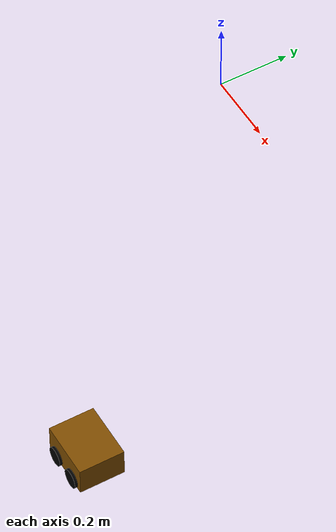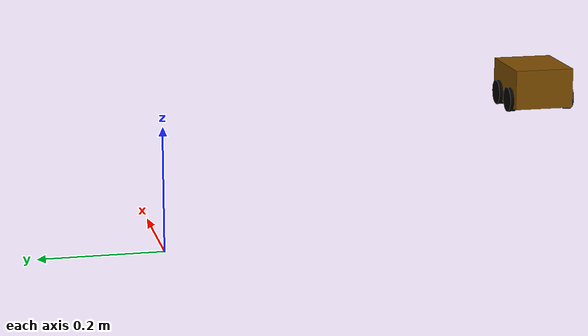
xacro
<?xml version="1.0"?>
<robot name="base" xmlns:xacro="http://www.ros.org/wiki/xacro">

	<xacro:property name="PI" value="3.141"/>

	<material name="black">
		<color rgba="0.0 0.0 0.0 1.0" />
	</material>

	<xacro:property name="base_footprint_radius" value="0.001" />
	<xacro:property name="earth_space" value="0.01" />

	<xacro:property name="base_link_l" value="0.15" />
	<xacro:property name="base_link_w" value="0.12" />
	<xacro:property name="base_link_h" value="0.08" />
	<xacro:property name="base_link_mg" value="0.5" />

	<link name="base_footprint">
		<visual>
			<geometry>
				<sphere radius="${base_footprint_radius}" />
			</geometry>
		</visual>
	</link>

	<link name="base_link">
		<visual>
			<geometry>
				<box size="${base_link_l}  ${base_link_w} ${base_link_h}" />
			</geometry>
			<origin xyz="0 0 0" rpy="0 0 0" />
			<material name="yellow">
				<color rgba="0.5 0.3 0.0 1" />
			</material>
		</visual>
		<collision>
			<geometry>
				<box size="${base_link_l}  ${base_link_w} ${base_link_h}" />
			</geometry>
			<origin xyz="0 0 0" rpy="0 0 0" />
		</collision>
		<xacro:Box_inertial_matrix m="${base_link_mg}" l="${base_link_l}" w="${base_link_w}" h="${base_link_h}"/>
	</link>

	<joint name="base_link2base_footprint" type="fixed">
		<parent link="base_footprint" />
		<child link="base_link" />
		<origin xyz="0.9 -0.9 ${earth_space + base_link_h / 2 }" rpy="0 0 0" />
	</joint>

	<gazebo reference="base_link">
		<material>Gazebo/Yellow</material>
	</gazebo>

	<xacro:property name="wheel_radius" value="0.025" />
	<xacro:property name="wheel_length" value="0.015" />
	<xacro:property name="wheel_m" value="0.5" />

	<xacro:macro name="add_wheels" params="name flag fr_ba">
		<link name="${name}_wheel">
			<visual>
				<geometry>
					<cylinder radius="${wheel_radius}" length="${wheel_length}" />
				</geometry>
				<origin xyz="0.0 0.0 0.0" rpy="${PI / 2} 0.0 0.0" />
				<material name="black" />
			</visual>

			<collision>
				<geometry>
					<cylinder radius="${wheel_radius}" length="${wheel_length}" />
				</geometry>
				<origin xyz="0.0 0.0 0.0" rpy="${PI / 2} 0.0 0.0" />
			</collision>
			<xacro:cylinder_inertial_matrix m="${wheel_m}" r="${wheel_radius}" h="${wheel_length}" />
		</link>

		<joint name="${name}_wheel2base_link" type="continuous">
			<parent link="base_link" />
			<child link="${name}_wheel" />
			<origin xyz="${fr_ba * base_link_l / 4} ${flag * base_link_w / 2} ${-(earth_space + base_link_h / 2 - wheel_radius) }" />
			<axis xyz="0 1 0" />
		</joint>

		<gazebo reference="${name}_wheel">
				<material>Gazebo/Red</material>
		</gazebo>
	</xacro:macro>

	<xacro:add_wheels name="left" flag="1" fr_ba = "1" />
	<xacro:add_wheels name="right" flag="-1" fr_ba = "1" />
	<xacro:add_wheels name="f_left" flag="1" fr_ba = "-1" />
	<xacro:add_wheels name="f_right" flag="-1" fr_ba = "-1" />
</robot>
